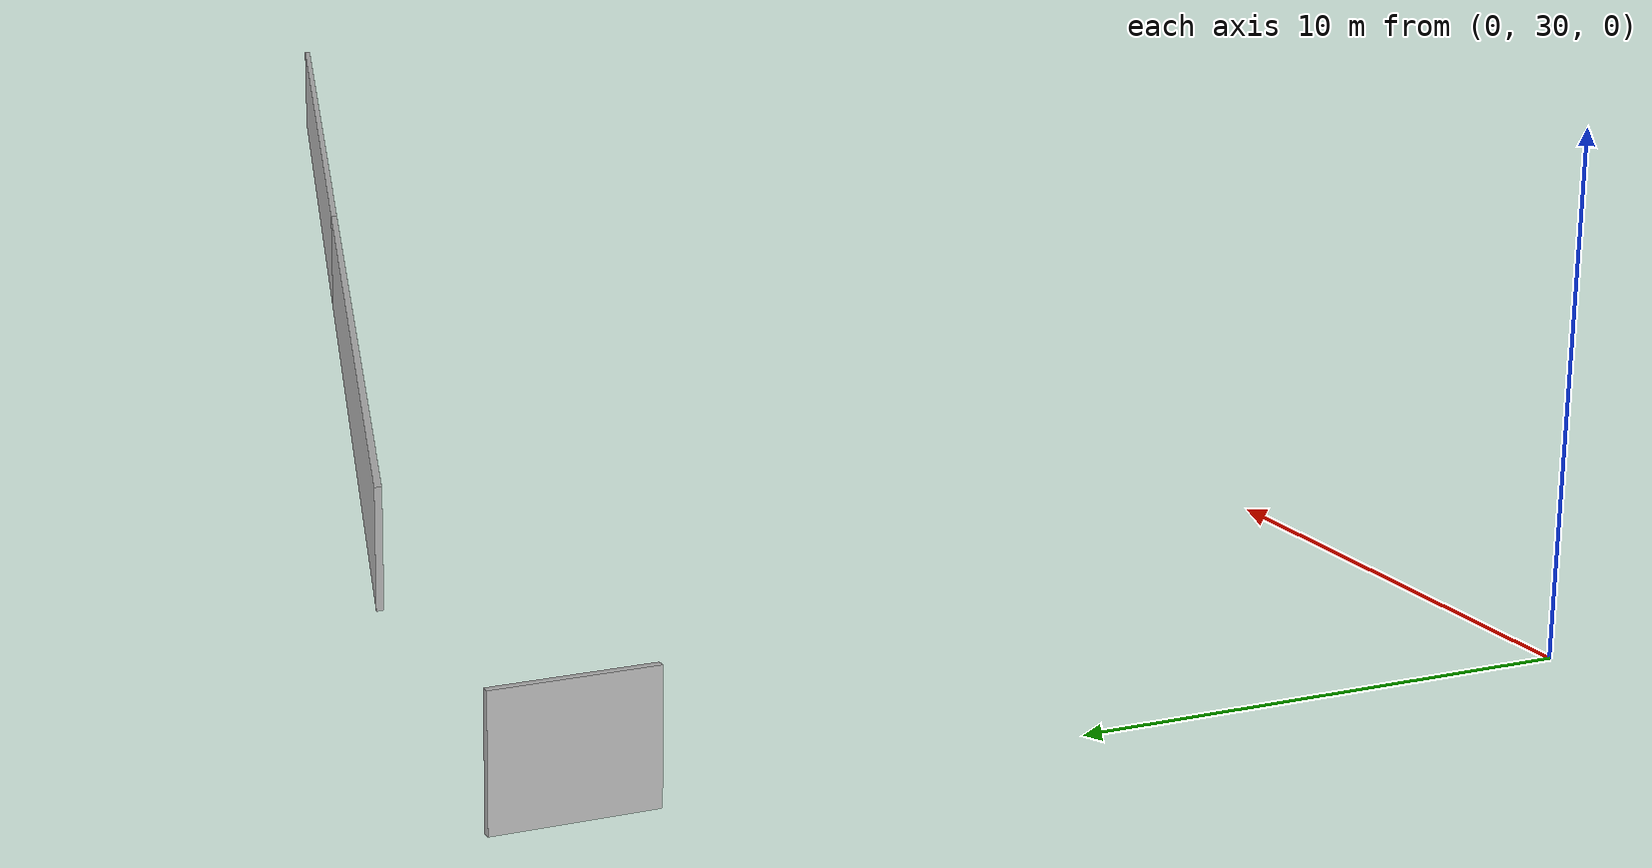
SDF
<?xml version="1.0" ?>
<sdf version="1.6">
  <model name="sps_0007">
    <pose frame="">0 0 0 0 -0 0</pose>
    <static>1</static>
    <self_collide>0</self_collide>
    <allow_auto_disable>0</allow_auto_disable>
    <link name="Wall5">
      <kinematic>0</kinematic>
      <gravity>1</gravity>
      <self_collide>0</self_collide>
      <collision name="collision">
        <geometry>
          <box>
            <size>25.8497 0.15 2.5</size>
          </box>
        </geometry>
        <pose frame="">0 0 0 0 -0 0</pose>
      </collision>
      <visual name="visual">
        <geometry>
          <box>
            <size>25.8497 0.15 2.5</size>
          </box>
        </geometry>
        <pose frame="">0 0 0 0 -0 0</pose>
        <cast_shadows>1</cast_shadows>
        <transparency>0.0</transparency>
      </visual>
      <pose frame="">46.8672 38.5427 1.25 0 -0 2.85503</pose>
    </link>
    <link name="Wall6">
      <kinematic>0</kinematic>
      <gravity>1</gravity>
      <self_collide>0</self_collide>
      <collision name="collision">
        <geometry>
          <box>
            <size>24.3912 0.15 2.5</size>
          </box>
        </geometry>
        <pose frame="">0 0 0 0 -0 0</pose>
      </collision>
      <visual name="visual">
        <geometry>
          <box>
            <size>24.3912 0.15 2.5</size>
          </box>
        </geometry>
        <pose frame="">0 0 0 0 -0 0</pose>
        <cast_shadows>1</cast_shadows>
        <transparency>0.0</transparency>
      </visual>
      <pose frame="">22.7711 45.6431 1.25 0 -0 2.85503</pose>
    </link>
    <link name="Wall4822">
      <kinematic>0</kinematic>
      <gravity>1</gravity>
      <self_collide>0</self_collide>
      <collision name="collision">
        <geometry>
          <box>
            <size>3.07596 0.15 2.5</size>
          </box>
        </geometry>
        <pose frame="">0 0 0 0 -0 0</pose>
      </collision>
      <visual name="visual">
        <geometry>
          <box>
            <size>3.07596 0.15 2.5</size>
          </box>
        </geometry>
        <pose frame="">0 0 0 0 -0 0</pose>
        <cast_shadows>1</cast_shadows>
        <transparency>0.0</transparency>
      </visual>
      <pose frame="">0 49.5878 1.25 0 -0 1.5708</pose>
    </link>
  </model>
</sdf>
